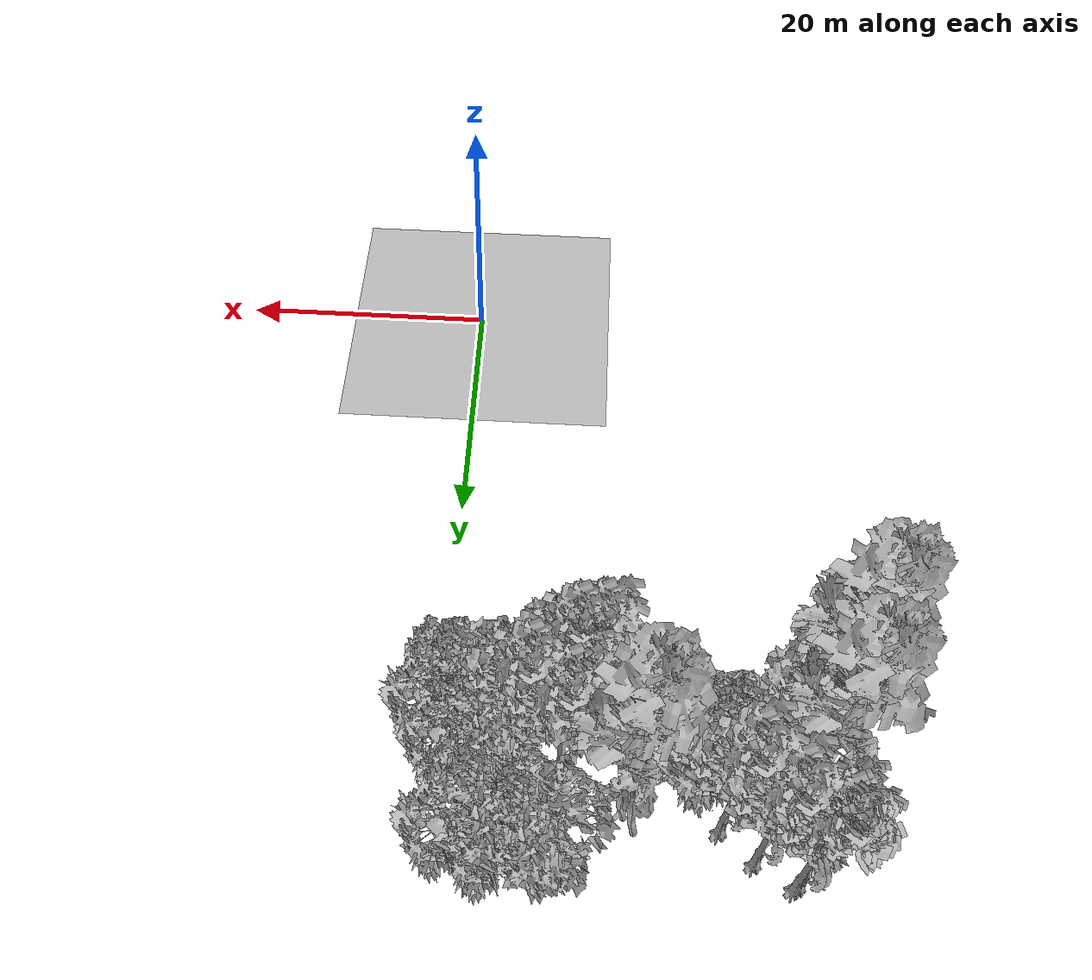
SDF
<sdf version="1.7">
 <world name="default">
  <model name="ground_plane">
   <static>1</static>
   <link name="link">
    <collision name="collision">
     <geometry><plane><normal>0 0 1</normal><size>100 100</size></plane></geometry>
     <surface><contact><ode><min_depth>0.01</min_depth><max_vel>0</max_vel></ode></contact></surface>
    </collision>
    <visual name="grass">
     <cast_shadows>0</cast_shadows>
     <geometry>
      <mesh>
       <scale>0.41000000000000003 0.41000000000000003 0.1</scale>
       <uri>file://grass_plane/meshes/grass_plane.dae</uri>
      </mesh>
     </geometry>
    </visual>
   </link>
  </model>
  <model name="Tree 7">
   <static>1</static>
   <pose>-8.924480028915518 37.32568058768811 0 1.57079 -0 0</pose>
   <link name="link">
    <collision name="collision">
     <geometry><mesh><scale>5 5 5</scale><uri>model://tree_9/meshes/tree_9.obj</uri></mesh></geometry>
    </collision>
    <visual name="visual">
     <geometry><mesh><scale>5 5 5</scale><uri>model://tree_9/meshes/tree_9.obj</uri></mesh></geometry>
    </visual>
   </link>
  </model>
  <model name="Tree 20">
   <static>1</static>
   <pose>-23.93520905923619 39.83151022851973 0 1.57079 -0 0</pose>
   <link name="link">
    <collision name="collision">
     <geometry><mesh><scale>5 5 5</scale><uri>model://tree_9/meshes/tree_9.obj</uri></mesh></geometry>
    </collision>
    <visual name="visual">
     <geometry><mesh><scale>5 5 5</scale><uri>model://tree_9/meshes/tree_9.obj</uri></mesh></geometry>
    </visual>
   </link>
  </model>
  <model name="Tree 24">
   <static>1</static>
   <pose>-20.20828327090916 41.49937359427143 0 1.57079 -0 0</pose>
   <link name="link">
    <collision name="collision">
     <geometry><mesh><scale>5 5 5</scale><uri>model://tree_2/meshes/tree_2.obj</uri></mesh></geometry>
    </collision>
    <visual name="visual">
     <geometry><mesh><scale>5 5 5</scale><uri>model://tree_2/meshes/tree_2.obj</uri></mesh></geometry>
    </visual>
   </link>
  </model>
  <model name="Tree 32">
   <static>1</static>
   <pose>-19.521945721071084 42.03346834511321 0 1.57079 -0 0</pose>
   <link name="link">
    <collision name="collision">
     <geometry><mesh><scale>5 5 5</scale><uri>model://tree_2/meshes/tree_2.obj</uri></mesh></geometry>
    </collision>
    <visual name="visual">
     <geometry><mesh><scale>5 5 5</scale><uri>model://tree_2/meshes/tree_2.obj</uri></mesh></geometry>
    </visual>
   </link>
  </model>
  <model name="Tree 113">
   <static>1</static>
   <pose>-8.527223338831114 41.52122721705305 0 1.57079 -0 0</pose>
   <link name="link">
    <collision name="collision">
     <geometry><mesh><scale>5 5 5</scale><uri>model://tree_9/meshes/tree_9.obj</uri></mesh></geometry>
    </collision>
    <visual name="visual">
     <geometry><mesh><scale>5 5 5</scale><uri>model://tree_9/meshes/tree_9.obj</uri></mesh></geometry>
    </visual>
   </link>
  </model>
  <model name="Tree 114">
   <static>1</static>
   <pose>-3.723555735731182 46.94386994159136 0 1.57079 -0 0</pose>
   <link name="link">
    <collision name="collision">
     <geometry><mesh><scale>5 5 5</scale><uri>model://tree_2/meshes/tree_2.obj</uri></mesh></geometry>
    </collision>
    <visual name="visual">
     <geometry><mesh><scale>5 5 5</scale><uri>model://tree_2/meshes/tree_2.obj</uri></mesh></geometry>
    </visual>
   </link>
  </model>
  <model name="Tree 125">
   <static>1</static>
   <pose>-10.347158183722698 37.0594135407499 0 1.57079 -0 0</pose>
   <link name="link">
    <collision name="collision">
     <geometry><mesh><scale>5 5 5</scale><uri>model://tree_9/meshes/tree_9.obj</uri></mesh></geometry>
    </collision>
    <visual name="visual">
     <geometry><mesh><scale>5 5 5</scale><uri>model://tree_9/meshes/tree_9.obj</uri></mesh></geometry>
    </visual>
   </link>
  </model>
  <model name="Tree 168">
   <static>1</static>
   <pose>-9.65585581139765 39.42043639937344 0 1.57079 -0 0</pose>
   <link name="link">
    <collision name="collision">
     <geometry><mesh><scale>5 5 5</scale><uri>model://tree_9/meshes/tree_9.obj</uri></mesh></geometry>
    </collision>
    <visual name="visual">
     <geometry><mesh><scale>5 5 5</scale><uri>model://tree_9/meshes/tree_9.obj</uri></mesh></geometry>
    </visual>
   </link>
  </model>
  <model name="Tree 185">
   <static>1</static>
   <pose>-2.051851682870037 38.80719769443908 0 1.57079 -0 0</pose>
   <link name="link">
    <collision name="collision">
     <geometry><mesh><scale>5 5 5</scale><uri>model://tree_2/meshes/tree_2.obj</uri></mesh></geometry>
    </collision>
    <visual name="visual">
     <geometry><mesh><scale>5 5 5</scale><uri>model://tree_2/meshes/tree_2.obj</uri></mesh></geometry>
    </visual>
   </link>
  </model>
  <model name="Tree 247">
   <static>1</static>
   <pose>-13.303245497820306 42.860824774339804 0 1.57079 -0 0</pose>
   <link name="link">
    <collision name="collision">
     <geometry><mesh><scale>5 5 5</scale><uri>model://tree_4/meshes/tree_4.obj</uri></mesh></geometry>
    </collision>
    <visual name="visual">
     <geometry><mesh><scale>5 5 5</scale><uri>model://tree_4/meshes/tree_4.obj</uri></mesh></geometry>
    </visual>
   </link>
  </model>
  <model name="Tree 271">
   <static>1</static>
   <pose>-6.158550140111437 40.03107607754687 0 1.57079 -0 0</pose>
   <link name="link">
    <collision name="collision">
     <geometry><mesh><scale>5 5 5</scale><uri>model://tree_9/meshes/tree_9.obj</uri></mesh></geometry>
    </collision>
    <visual name="visual">
     <geometry><mesh><scale>5 5 5</scale><uri>model://tree_9/meshes/tree_9.obj</uri></mesh></geometry>
    </visual>
   </link>
  </model>
  <model name="Tree 273">
   <static>1</static>
   <pose>-23.87196098691396 48.22119927108969 0 1.57079 -0 0</pose>
   <link name="link">
    <collision name="collision">
     <geometry><mesh><scale>5 5 5</scale><uri>model://tree_9/meshes/tree_9.obj</uri></mesh></geometry>
    </collision>
    <visual name="visual">
     <geometry><mesh><scale>5 5 5</scale><uri>model://tree_9/meshes/tree_9.obj</uri></mesh></geometry>
    </visual>
   </link>
  </model>
  <model name="Tree 308">
   <static>1</static>
   <pose>-27.061407241310498 35.17473423567277 0 1.57079 -0 0</pose>
   <link name="link">
    <collision name="collision">
     <geometry><mesh><scale>5 5 5</scale><uri>model://tree_4/meshes/tree_4.obj</uri></mesh></geometry>
    </collision>
    <visual name="visual">
     <geometry><mesh><scale>5 5 5</scale><uri>model://tree_4/meshes/tree_4.obj</uri></mesh></geometry>
    </visual>
   </link>
  </model>
  <model name="Tree 336">
   <static>1</static>
   <pose>-21.377857462141794 46.76216035861866 0 1.57079 -0 0</pose>
   <link name="link">
    <collision name="collision">
     <geometry><mesh><scale>5 5 5</scale><uri>model://tree_9/meshes/tree_9.obj</uri></mesh></geometry>
    </collision>
    <visual name="visual">
     <geometry><mesh><scale>5 5 5</scale><uri>model://tree_9/meshes/tree_9.obj</uri></mesh></geometry>
    </visual>
   </link>
  </model>
  <model name="Tree 353">
   <static>1</static>
   <pose>-19.195181280287645 44.75454680597346 0 1.57079 -0 0</pose>
   <link name="link">
    <collision name="collision">
     <geometry><mesh><scale>5 5 5</scale><uri>model://tree_9/meshes/tree_9.obj</uri></mesh></geometry>
    </collision>
    <visual name="visual">
     <geometry><mesh><scale>5 5 5</scale><uri>model://tree_9/meshes/tree_9.obj</uri></mesh></geometry>
    </visual>
   </link>
  </model>
  <model name="Tree 381">
   <static>1</static>
   <pose>-6.417627224293916 48.04051952422654 0 1.57079 -0 0</pose>
   <link name="link">
    <collision name="collision">
     <geometry><mesh><scale>5 5 5</scale><uri>model://tree_2/meshes/tree_2.obj</uri></mesh></geometry>
    </collision>
    <visual name="visual">
     <geometry><mesh><scale>5 5 5</scale><uri>model://tree_2/meshes/tree_2.obj</uri></mesh></geometry>
    </visual>
   </link>
  </model>
  <model name="Tree 422">
   <static>1</static>
   <pose>-24.175738275939146 48.068718988952014 0 1.57079 -0 0</pose>
   <link name="link">
    <collision name="collision">
     <geometry><mesh><scale>5 5 5</scale><uri>model://tree_9/meshes/tree_9.obj</uri></mesh></geometry>
    </collision>
    <visual name="visual">
     <geometry><mesh><scale>5 5 5</scale><uri>model://tree_9/meshes/tree_9.obj</uri></mesh></geometry>
    </visual>
   </link>
  </model>
  <model name="Tree 431">
   <static>1</static>
   <pose>-3.271768130506601 41.3278914187061 0 1.57079 -0 0</pose>
   <link name="link">
    <collision name="collision">
     <geometry><mesh><scale>5 5 5</scale><uri>model://tree_2/meshes/tree_2.obj</uri></mesh></geometry>
    </collision>
    <visual name="visual">
     <geometry><mesh><scale>5 5 5</scale><uri>model://tree_2/meshes/tree_2.obj</uri></mesh></geometry>
    </visual>
   </link>
  </model>
  <model name="Tree 490">
   <static>1</static>
   <pose>-25.734556192536186 40.23338756469211 0 1.57079 -0 0</pose>
   <link name="link">
    <collision name="collision">
     <geometry><mesh><scale>5 5 5</scale><uri>model://tree_4/meshes/tree_4.obj</uri></mesh></geometry>
    </collision>
    <visual name="visual">
     <geometry><mesh><scale>5 5 5</scale><uri>model://tree_4/meshes/tree_4.obj</uri></mesh></geometry>
    </visual>
   </link>
  </model>
  <model name="Bush 14">
   <static>1</static>
   <pose>-7.740023119201446 45.28685052112931 0 1.57079 -0 0</pose>
   <link name="link">
    <collision name="collision">
     <geometry><mesh><scale>2 2 2</scale><uri>model://bush_2/meshes/bush_2.obj</uri></mesh></geometry>
    </collision>
    <visual name="visual">
     <geometry><mesh><scale>5 5 5</scale><uri>model://bush_2/meshes/bush_2.obj</uri></mesh></geometry>
    </visual>
   </link>
  </model>
  <model name="Bush 28">
   <static>1</static>
   <pose>-15.70396979115661 35.86902191116023 0 1.57079 -0 0</pose>
   <link name="link">
    <collision name="collision">
     <geometry><mesh><scale>2 2 2</scale><uri>model://bush_2/meshes/bush_2.obj</uri></mesh></geometry>
    </collision>
    <visual name="visual">
     <geometry><mesh><scale>5 5 5</scale><uri>model://bush_2/meshes/bush_2.obj</uri></mesh></geometry>
    </visual>
   </link>
  </model>
  <model name="Bush 92">
   <static>1</static>
   <pose>-7.4934382872977 35.15341153990893 0 1.57079 -0 0</pose>
   <link name="link">
    <collision name="collision">
     <geometry><mesh><scale>2 2 2</scale><uri>model://bush_1/meshes/bush_1.obj</uri></mesh></geometry>
    </collision>
    <visual name="visual">
     <geometry><mesh><scale>5 5 5</scale><uri>model://bush_1/meshes/bush_1.obj</uri></mesh></geometry>
    </visual>
   </link>
  </model>
  <model name="Bush 95">
   <static>1</static>
   <pose>-17.8729954337571 36.649760125783075 0 1.57079 -0 0</pose>
   <link name="link">
    <collision name="collision">
     <geometry><mesh><scale>2 2 2</scale><uri>model://bush_2/meshes/bush_2.obj</uri></mesh></geometry>
    </collision>
    <visual name="visual">
     <geometry><mesh><scale>5 5 5</scale><uri>model://bush_2/meshes/bush_2.obj</uri></mesh></geometry>
    </visual>
   </link>
  </model>
 </world>
</sdf>
